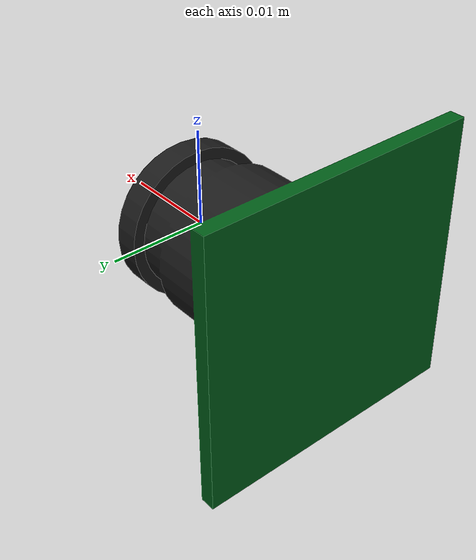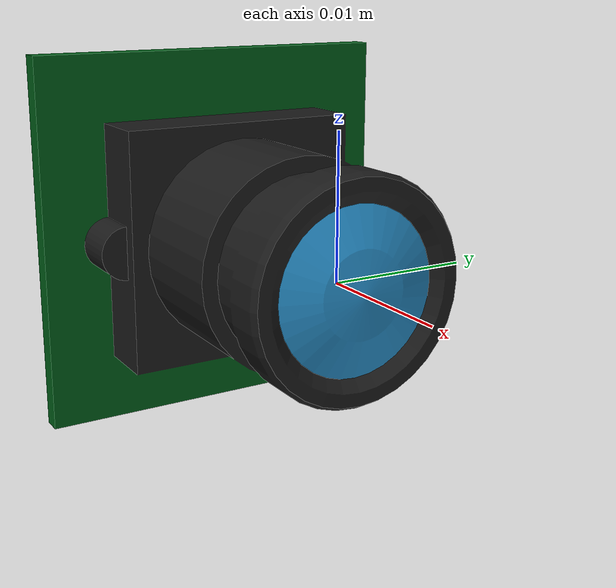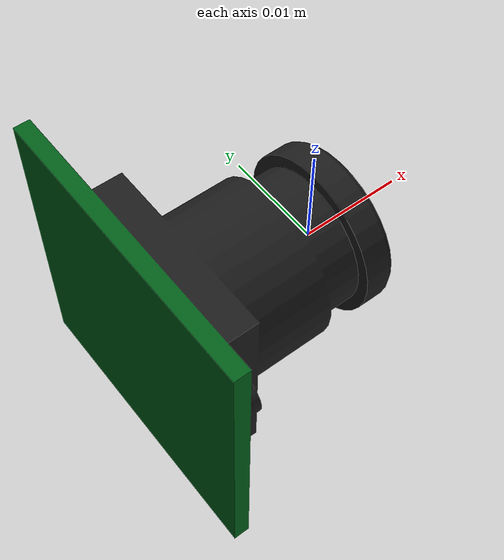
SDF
<?xml version="1.0" ?>
<sdf version="1.5">
  <model name="Board Camera">
    <pose>0 0 0 0 0 0</pose>
    <static>false</static>
    <link name="link">
      <inertial>
        <mass>0.016</mass>
        <inertia>
          <ixx>1</ixx>
          <ixy>0</ixy>
          <ixz>0</ixz>
          <iyy>1</iyy>
          <iyz>0</iyz>
          <izz>1</izz>
        </inertia>
      </inertial>

      <visual name="visual">
        <geometry>
          <mesh>
            <uri>model://board_camera/meshes/board_camera.dae</uri>
          </mesh>
	      </geometry>
      </visual>

      <sensor type="camera" name="static_camera_sensor">
        <camera name="static_cam">
          <horizontal_fov>1.57075</horizontal_fov>
          <image>
            <format>R8G8B8</format>
            <width>1680</width>
            <height>1050</height>
          </image>
          <clip>
            <near>0.01</near>
            <far>8000</far>
          </clip>

          <save enabled="false">
            <path>/tmp/gazebo_frames</path>
          </save>
        </camera>

        <always_on>1</always_on>
        <update_rate>30</update_rate>
        <visualize>false</visualize>

        <plugin name="static_recorder_camera_plugin" filename="librecorder_camera_plugin.so">
          <saveVideo>false</saveVideo>    <!-- 'true' or 'false' -->
          <videoDir>/home/aurelien/Videos/shots/</videoDir>      <!-- Must already exist -->
          <videoFilename>cam_static</videoFilename>
          <videoFileExt>avi</videoFileExt>    <!-- Only avi is supported by CV2 -->
          <videoCodec>MP4V</videoCodec>   <!-- List on: http://www.fourcc.org/codecs.php DAVC  LMP4   X264-->

          <saveFrames>false</saveFrames>    <!-- 'true' or 'false' -->
          <framesDir>/tmp/gazebo_frames2/</framesDir>    <!-- Must already exist -->
          <framesFilename>img_</framesFilename>
          <framesFileExt>png</framesFileExt>

          <imageTopicName>recorder_cam_static</imageTopicName>
        </plugin>
      </sensor>
    </link>
  </model>
</sdf>
